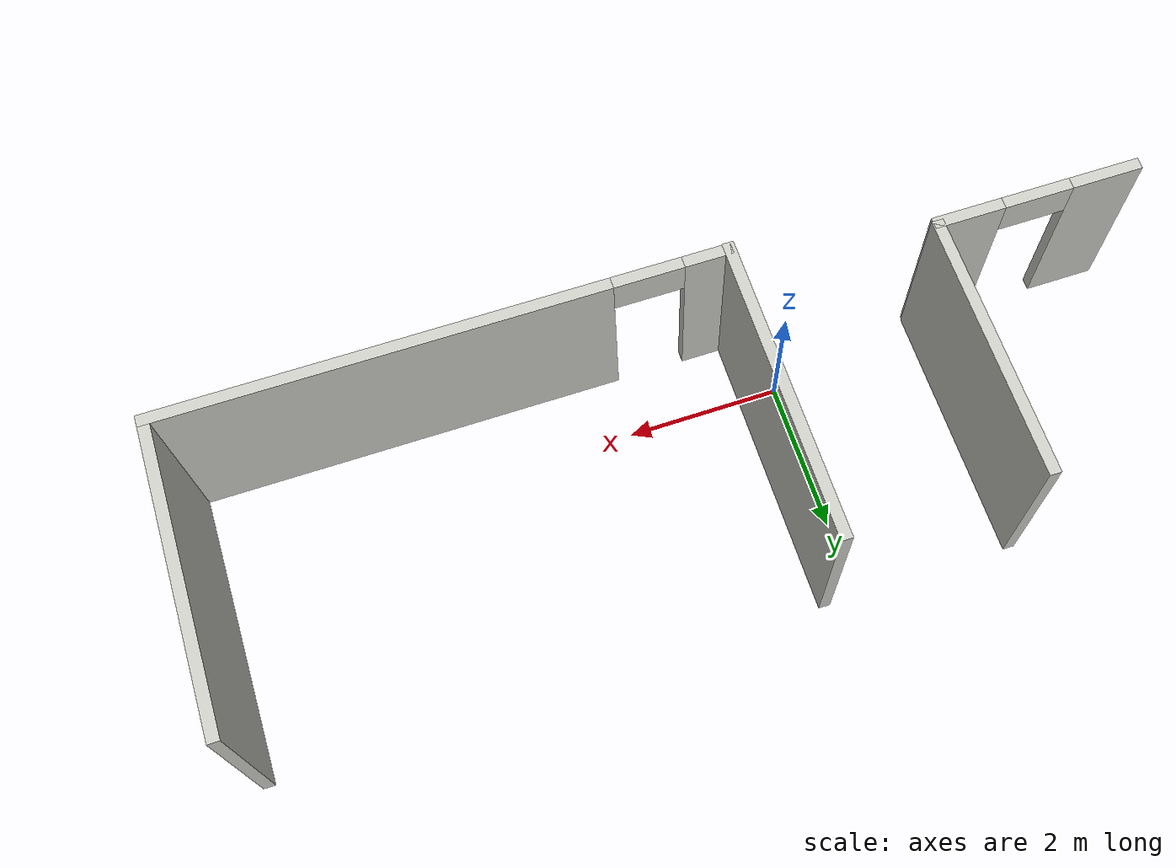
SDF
<?xml version='1.0'?>
<sdf version='1.7'>
  <model name='house_unseen_v2'>
    <pose>1.43156 1.01728 0 0 -0 0</pose>
    <link name='Wall_0'>
      <collision name='Wall_0_Collision'>
        <geometry>
          <box>
            <size>4 0.15 2.5</size>
          </box>
        </geometry>
        <pose>0 0 1.25 0 -0 0</pose>
      </collision>
      <visual name='Wall_0_Visual'>
        <pose>0 0 1.25 0 -0 0</pose>
        <geometry>
          <box>
            <size>4 0.15 2.5</size>
          </box>
        </geometry>
        <material>
          <script>
            <uri>file://media/materials/scripts/gazebo.material</uri>
            <name>Gazebo/CeilingTiled</name>
          </script>
          <ambient>1 1 1 1</ambient>
        </material>
        <meta>
          <layer>0</layer>
        </meta>
      </visual>
      <pose>-1.00503 -0.00575 0 0 -0 -1.5708</pose>
    </link>
    <link name='Wall_3'>
      <collision name='Wall_3_Collision'>
        <geometry>
          <box>
            <size>3.5 0.15 2.5</size>
          </box>
        </geometry>
        <pose>0 0 1.25 0 -0 0</pose>
      </collision>
      <visual name='Wall_3_Visual'>
        <pose>0 0 1.25 0 -0 0</pose>
        <geometry>
          <box>
            <size>3.5 0.15 2.5</size>
          </box>
        </geometry>
        <material>
          <script>
            <uri>file://media/materials/scripts/gazebo.material</uri>
            <name>Gazebo/CeilingTiled</name>
          </script>
          <ambient>1 1 1 1</ambient>
        </material>
        <meta>
          <layer>0</layer>
        </meta>
      </visual>
      <pose>-3.52467 0.254128 0 0 -0 1.5708</pose>
    </link>
    <link name='Wall_5'>
      <pose>-4.84097 -1.4682 0 0 -0 0</pose>
      <visual name='Wall_5_Visual_0'>
        <pose>-0.911744 0 1.25 0 -0 0</pose>
        <geometry>
          <box>
            <size>0.926512 0.15 2.5</size>
          </box>
        </geometry>
        <material>
          <script>
            <uri>file://media/materials/scripts/gazebo.material</uri>
            <name>Gazebo/CeilingTiled</name>
          </script>
          <ambient>1 1 1 1</ambient>
        </material>
        <meta>
          <layer>0</layer>
        </meta>
      </visual>
      <collision name='Wall_5_Collision_0'>
        <geometry>
          <box>
            <size>0.926512 0.15 2.5</size>
          </box>
        </geometry>
        <pose>-0.911744 0 1.25 0 -0 0</pose>
      </collision>
      <visual name='Wall_5_Visual_1'>
        <pose>0.913256 0 1.25 0 -0 0</pose>
        <geometry>
          <box>
            <size>0.923488 0.15 2.5</size>
          </box>
        </geometry>
        <material>
          <script>
            <uri>file://media/materials/scripts/gazebo.material</uri>
            <name>Gazebo/CeilingTiled</name>
          </script>
          <ambient>1 1 1 1</ambient>
        </material>
        <meta>
          <layer>0</layer>
        </meta>
      </visual>
      <collision name='Wall_5_Collision_1'>
        <geometry>
          <box>
            <size>0.923488 0.15 2.5</size>
          </box>
        </geometry>
        <pose>0.913256 0 1.25 0 -0 0</pose>
      </collision>
      <visual name='Wall_5_Visual_2'>
        <pose>0.001512 0 2.25 0 -0 0</pose>
        <geometry>
          <box>
            <size>0.9 0.15 0.5</size>
          </box>
        </geometry>
        <material>
          <script>
            <uri>file://media/materials/scripts/gazebo.material</uri>
            <name>Gazebo/CeilingTiled</name>
          </script>
          <ambient>1 1 1 1</ambient>
        </material>
        <meta>
          <layer>0</layer>
        </meta>
      </visual>
      <collision name='Wall_5_Collision_2'>
        <geometry>
          <box>
            <size>0.9 0.15 0.5</size>
          </box>
        </geometry>
        <pose>0.001512 0 2.25 0 -0 0</pose>
      </collision>
    </link>
    <link name='Wall_7'>
      <pose>2.59097 -1.91925 0 0 -0 0</pose>
      <visual name='Wall_7_Visual_0'>
        <pose>-3.31472 0 1.25 0 -0 0</pose>
        <geometry>
          <box>
            <size>0.62057 0.15 2.5</size>
          </box>
        </geometry>
        <material>
          <script>
            <uri>file://media/materials/scripts/gazebo.material</uri>
            <name>Gazebo/CeilingTiled</name>
          </script>
          <ambient>1 1 1 1</ambient>
        </material>
        <meta>
          <layer>0</layer>
        </meta>
      </visual>
      <collision name='Wall_7_Collision_0'>
        <geometry>
          <box>
            <size>0.62057 0.15 2.5</size>
          </box>
        </geometry>
        <pose>-3.31472 0 1.25 0 -0 0</pose>
      </collision>
      <visual name='Wall_7_Visual_1'>
        <pose>0.760285 0 1.25 0 -0 0</pose>
        <geometry>
          <box>
            <size>5.72943 0.15 2.5</size>
          </box>
        </geometry>
        <material>
          <script>
            <uri>file://media/materials/scripts/gazebo.material</uri>
            <name>Gazebo/CeilingTiled</name>
          </script>
          <ambient>1 1 1 1</ambient>
        </material>
        <meta>
          <layer>0</layer>
        </meta>
      </visual>
      <collision name='Wall_7_Collision_1'>
        <geometry>
          <box>
            <size>5.72943 0.15 2.5</size>
          </box>
        </geometry>
        <pose>0.760285 0 1.25 0 -0 0</pose>
      </collision>
      <visual name='Wall_7_Visual_2'>
        <pose>-2.55443 0 2.25 0 -0 0</pose>
        <geometry>
          <box>
            <size>0.9 0.15 0.5</size>
          </box>
        </geometry>
        <material>
          <script>
            <uri>file://media/materials/scripts/gazebo.material</uri>
            <name>Gazebo/CeilingTiled</name>
          </script>
          <ambient>1 1 1 1</ambient>
        </material>
        <meta>
          <layer>0</layer>
        </meta>
      </visual>
      <collision name='Wall_7_Collision_2'>
        <geometry>
          <box>
            <size>0.9 0.15 0.5</size>
          </box>
        </geometry>
        <pose>-2.55443 0 2.25 0 -0 0</pose>
      </collision>
    </link>
    <link name='Wall_9'>
      <collision name='Wall_9_Collision'>
        <geometry>
          <box>
            <size>4 0.15 2.5</size>
          </box>
        </geometry>
        <pose>0 0 1.25 0 -0 0</pose>
      </collision>
      <visual name='Wall_9_Visual'>
        <pose>0 0 1.25 0 -0 0</pose>
        <geometry>
          <box>
            <size>4 0.15 2.5</size>
          </box>
        </geometry>
        <material>
          <script>
            <uri>file://media/materials/scripts/gazebo.material</uri>
            <name>Gazebo/CeilingTiled</name>
          </script>
          <ambient>1 1 1 1</ambient>
        </material>
        <meta>
          <layer>0</layer>
        </meta>
      </visual>
      <pose>6.14097 0.00575 0 0 -0 1.5708</pose>
    </link>
    <static>1</static>
  </model>
</sdf>
